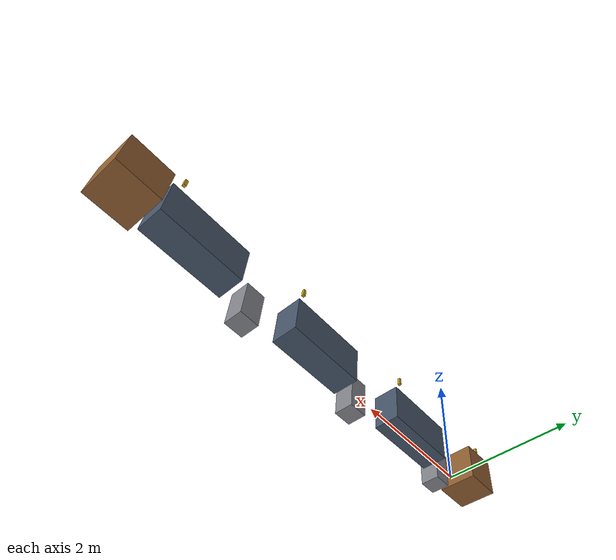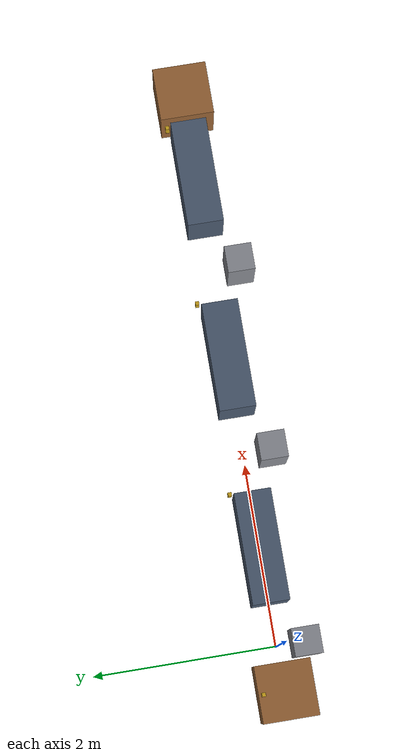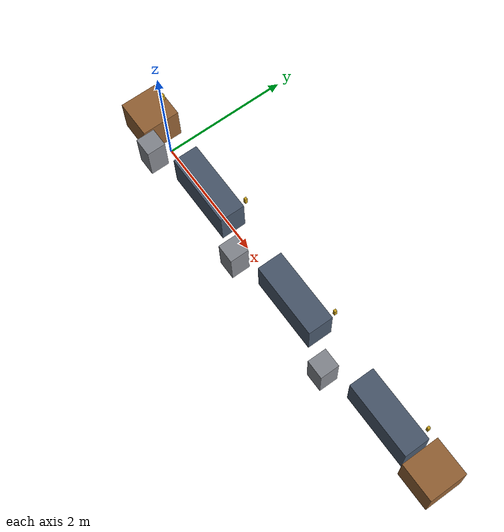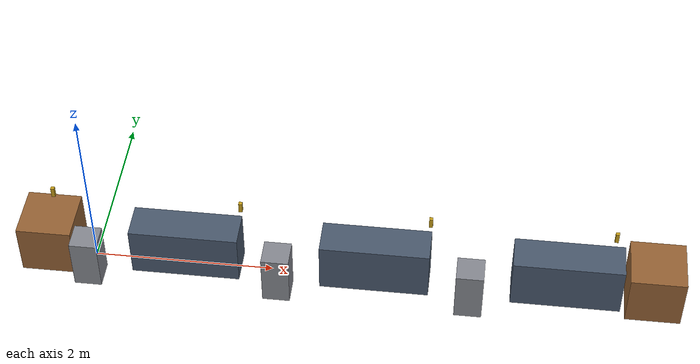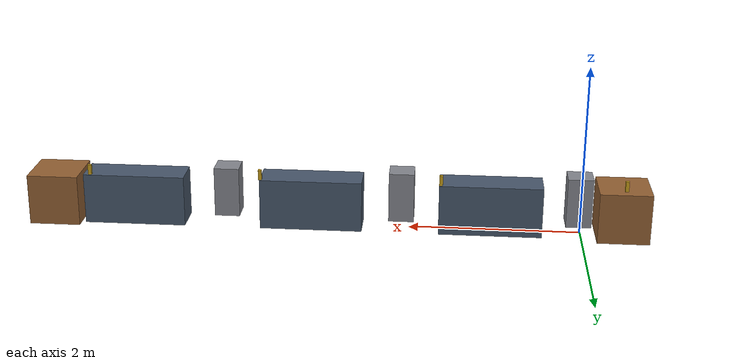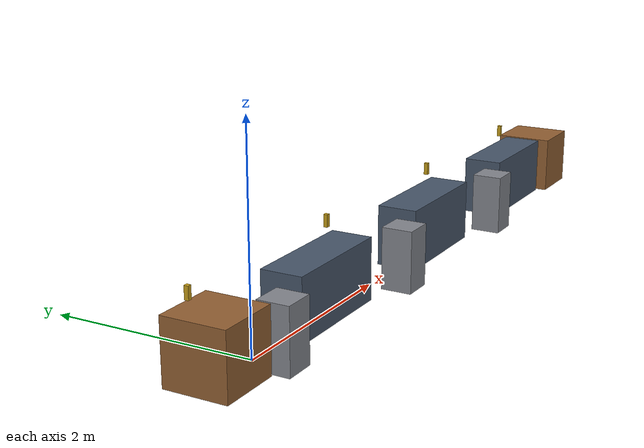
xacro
<?xml version="1.0"?>
<robot xmlns:xacro="http://ros.org/wiki/xacro" name="cell_a">

  <gazebo>
    <static>true</static>
  </gazebo>

  <!-- The facility root. Tied to the surveyed physical origin (L5); every frame
       below is expressed relative to it. -->
  <link name="cite_world"/>

  <material name="conveyor_frame">
    <color rgba="0.28 0.34 0.42 1"/>
  </material>
  <material name="pedestal_steel">
    <color rgba="0.52 0.53 0.56 1"/>
  </material>
  <material name="sensor_housing">
    <color rgba="0.78 0.62 0.1 1"/>
  </material>
  <material name="table_top">
    <color rgba="0.58 0.38 0.2 1"/>
  </material>

  <!-- beam_c1_out — break_beam -->
  <link name="beam_c1_out_base_link">
    <inertial>
      <origin xyz="0 0 0.06" rpy="0 0 0"/>
      <mass value="0.25"/>
      <inertia ixx="0.00033333" ixy="0"
               ixz="0" iyy="0.00033333"
               iyz="0" izz="6.667e-05"/>
    </inertial>
    <visual>
      <origin xyz="0 0 0.06" rpy="0 0 0"/>
      <geometry><box size="0.04 0.04 0.12"/></geometry>
      <material name="sensor_housing"/>
    </visual>
    <collision>
      <origin xyz="0 0 0.06" rpy="0 0 0"/>
      <geometry><box size="0.04 0.04 0.12"/></geometry>
    </collision>
  </link>
  <joint name="beam_c1_out_anchor" type="fixed">
    <parent link="cite_world"/>
    <child link="beam_c1_out_base_link"/>
    <origin xyz="1.63 0.25 0.63" rpy="0 0 0"/>
  </joint>
  <link name="beam_c1_out_beam"/>
  <joint name="beam_c1_out_beam_fixed" type="fixed">
    <parent link="beam_c1_out_base_link"/>
    <child link="beam_c1_out_beam"/>
    <origin xyz="0 0 0" rpy="0 0 0"/>
  </joint>

  <!-- beam_c2_out — break_beam -->
  <link name="beam_c2_out_base_link">
    <inertial>
      <origin xyz="0 0 0.06" rpy="0 0 0"/>
      <mass value="0.25"/>
      <inertia ixx="0.00033333" ixy="0"
               ixz="0" iyy="0.00033333"
               iyz="0" izz="6.667e-05"/>
    </inertial>
    <visual>
      <origin xyz="0 0 0.06" rpy="0 0 0"/>
      <geometry><box size="0.04 0.04 0.12"/></geometry>
      <material name="sensor_housing"/>
    </visual>
    <collision>
      <origin xyz="0 0 0.06" rpy="0 0 0"/>
      <geometry><box size="0.04 0.04 0.12"/></geometry>
    </collision>
  </link>
  <joint name="beam_c2_out_anchor" type="fixed">
    <parent link="cite_world"/>
    <child link="beam_c2_out_base_link"/>
    <origin xyz="3.73 0.25 0.63" rpy="0 0 0"/>
  </joint>
  <link name="beam_c2_out_beam"/>
  <joint name="beam_c2_out_beam_fixed" type="fixed">
    <parent link="beam_c2_out_base_link"/>
    <child link="beam_c2_out_beam"/>
    <origin xyz="0 0 0" rpy="0 0 0"/>
  </joint>

  <!-- beam_c3_out — break_beam -->
  <link name="beam_c3_out_base_link">
    <inertial>
      <origin xyz="0 0 0.06" rpy="0 0 0"/>
      <mass value="0.25"/>
      <inertia ixx="0.00033333" ixy="0"
               ixz="0" iyy="0.00033333"
               iyz="0" izz="6.667e-05"/>
    </inertial>
    <visual>
      <origin xyz="0 0 0.06" rpy="0 0 0"/>
      <geometry><box size="0.04 0.04 0.12"/></geometry>
      <material name="sensor_housing"/>
    </visual>
    <collision>
      <origin xyz="0 0 0.06" rpy="0 0 0"/>
      <geometry><box size="0.04 0.04 0.12"/></geometry>
    </collision>
  </link>
  <joint name="beam_c3_out_anchor" type="fixed">
    <parent link="cite_world"/>
    <child link="beam_c3_out_base_link"/>
    <origin xyz="5.745 0.25 0.63" rpy="0 0 0"/>
  </joint>
  <link name="beam_c3_out_beam"/>
  <joint name="beam_c3_out_beam_fixed" type="fixed">
    <parent link="beam_c3_out_base_link"/>
    <child link="beam_c3_out_beam"/>
    <origin xyz="0 0 0" rpy="0 0 0"/>
  </joint>

  <!-- beam_pick — break_beam -->
  <link name="beam_pick_base_link">
    <inertial>
      <origin xyz="0 0 0.06" rpy="0 0 0"/>
      <mass value="0.25"/>
      <inertia ixx="0.00033333" ixy="0"
               ixz="0" iyy="0.00033333"
               iyz="0" izz="6.667e-05"/>
    </inertial>
    <visual>
      <origin xyz="0 0 0.06" rpy="0 0 0"/>
      <geometry><box size="0.04 0.04 0.12"/></geometry>
      <material name="sensor_housing"/>
    </visual>
    <collision>
      <origin xyz="0 0 0.06" rpy="0 0 0"/>
      <geometry><box size="0.04 0.04 0.12"/></geometry>
    </collision>
  </link>
  <joint name="beam_pick_anchor" type="fixed">
    <parent link="cite_world"/>
    <child link="beam_pick_base_link"/>
    <origin xyz="-0.475 0.25 0.63" rpy="0 0 0"/>
  </joint>
  <link name="beam_pick_beam"/>
  <joint name="beam_pick_beam_fixed" type="fixed">
    <parent link="beam_pick_base_link"/>
    <child link="beam_pick_beam"/>
    <origin xyz="0 0 0" rpy="0 0 0"/>
  </joint>

  <!-- conveyor_1 — belt_1200x400 -->
  <link name="conveyor_1_base_link">
    <inertial>
      <origin xyz="0 0 0.3" rpy="0 0 0"/>
      <mass value="45"/>
      <inertia ixx="1.95" ixy="0"
               ixz="0" iyy="6.75"
               iyz="0" izz="6"/>
    </inertial>
    <visual>
      <origin xyz="0 0 0.3" rpy="0 0 0"/>
      <geometry><box size="1.2 0.4 0.6"/></geometry>
      <material name="conveyor_frame"/>
    </visual>
    <collision>
      <origin xyz="0 0 0.3" rpy="0 0 0"/>
      <geometry><box size="1.2 0.4 0.6"/></geometry>
    </collision>
  </link>
  <joint name="conveyor_1_anchor" type="fixed">
    <parent link="cite_world"/>
    <child link="conveyor_1_base_link"/>
    <origin xyz="1.05 0 0" rpy="0 0 0"/>
  </joint>
  <link name="conveyor_1_infeed"/>
  <joint name="conveyor_1_infeed_fixed" type="fixed">
    <parent link="conveyor_1_base_link"/>
    <child link="conveyor_1_infeed"/>
    <origin xyz="-0.545 0 0.6" rpy="0 0 0"/>
  </joint>
  <link name="conveyor_1_outfeed"/>
  <joint name="conveyor_1_outfeed_fixed" type="fixed">
    <parent link="conveyor_1_base_link"/>
    <child link="conveyor_1_outfeed"/>
    <origin xyz="0.545 0 0.6" rpy="0 0 0"/>
  </joint>
  <link name="conveyor_1_surface"/>
  <joint name="conveyor_1_surface_fixed" type="fixed">
    <parent link="conveyor_1_base_link"/>
    <child link="conveyor_1_surface"/>
    <origin xyz="0 0 0.6" rpy="0 0 0"/>
  </joint>

  <!-- conveyor_2 — belt_1200x400 -->
  <link name="conveyor_2_base_link">
    <inertial>
      <origin xyz="0 0 0.3" rpy="0 0 0"/>
      <mass value="45"/>
      <inertia ixx="1.95" ixy="0"
               ixz="0" iyy="6.75"
               iyz="0" izz="6"/>
    </inertial>
    <visual>
      <origin xyz="0 0 0.3" rpy="0 0 0"/>
      <geometry><box size="1.2 0.4 0.6"/></geometry>
      <material name="conveyor_frame"/>
    </visual>
    <collision>
      <origin xyz="0 0 0.3" rpy="0 0 0"/>
      <geometry><box size="1.2 0.4 0.6"/></geometry>
    </collision>
  </link>
  <joint name="conveyor_2_anchor" type="fixed">
    <parent link="cite_world"/>
    <child link="conveyor_2_base_link"/>
    <origin xyz="3.15 0 0" rpy="0 0 0"/>
  </joint>
  <link name="conveyor_2_infeed"/>
  <joint name="conveyor_2_infeed_fixed" type="fixed">
    <parent link="conveyor_2_base_link"/>
    <child link="conveyor_2_infeed"/>
    <origin xyz="-0.545 0 0.6" rpy="0 0 0"/>
  </joint>
  <link name="conveyor_2_outfeed"/>
  <joint name="conveyor_2_outfeed_fixed" type="fixed">
    <parent link="conveyor_2_base_link"/>
    <child link="conveyor_2_outfeed"/>
    <origin xyz="0.545 0 0.6" rpy="0 0 0"/>
  </joint>
  <link name="conveyor_2_surface"/>
  <joint name="conveyor_2_surface_fixed" type="fixed">
    <parent link="conveyor_2_base_link"/>
    <child link="conveyor_2_surface"/>
    <origin xyz="0 0 0.6" rpy="0 0 0"/>
  </joint>

  <!-- conveyor_3 — belt_1200x400 -->
  <link name="conveyor_3_base_link">
    <inertial>
      <origin xyz="0 0 0.3" rpy="0 0 0"/>
      <mass value="45"/>
      <inertia ixx="1.95" ixy="0"
               ixz="0" iyy="6.75"
               iyz="0" izz="6"/>
    </inertial>
    <visual>
      <origin xyz="0 0 0.3" rpy="0 0 0"/>
      <geometry><box size="1.2 0.4 0.6"/></geometry>
      <material name="conveyor_frame"/>
    </visual>
    <collision>
      <origin xyz="0 0 0.3" rpy="0 0 0"/>
      <geometry><box size="1.2 0.4 0.6"/></geometry>
    </collision>
  </link>
  <joint name="conveyor_3_anchor" type="fixed">
    <parent link="cite_world"/>
    <child link="conveyor_3_base_link"/>
    <origin xyz="5.25 0 0" rpy="0 0 0"/>
  </joint>
  <link name="conveyor_3_infeed"/>
  <joint name="conveyor_3_infeed_fixed" type="fixed">
    <parent link="conveyor_3_base_link"/>
    <child link="conveyor_3_infeed"/>
    <origin xyz="-0.545 0 0.6" rpy="0 0 0"/>
  </joint>
  <link name="conveyor_3_outfeed"/>
  <joint name="conveyor_3_outfeed_fixed" type="fixed">
    <parent link="conveyor_3_base_link"/>
    <child link="conveyor_3_outfeed"/>
    <origin xyz="0.545 0 0.6" rpy="0 0 0"/>
  </joint>
  <link name="conveyor_3_surface"/>
  <joint name="conveyor_3_surface_fixed" type="fixed">
    <parent link="conveyor_3_base_link"/>
    <child link="conveyor_3_surface"/>
    <origin xyz="0 0 0.6" rpy="0 0 0"/>
  </joint>

  <!-- pedestal_1 — pedestal_600 -->
  <link name="pedestal_1_base_link">
    <inertial>
      <origin xyz="0 0 0.3" rpy="0 0 0"/>
      <mass value="40"/>
      <inertia ixx="1.5" ixy="0"
               ixz="0" iyy="1.5"
               iyz="0" izz="0.6"/>
    </inertial>
    <visual>
      <origin xyz="0 0 0.3" rpy="0 0 0"/>
      <geometry><box size="0.3 0.3 0.6"/></geometry>
      <material name="pedestal_steel"/>
    </visual>
    <collision>
      <origin xyz="0 0 0.3" rpy="0 0 0"/>
      <geometry><box size="0.3 0.3 0.6"/></geometry>
    </collision>
  </link>
  <joint name="pedestal_1_anchor" type="fixed">
    <parent link="cite_world"/>
    <child link="pedestal_1_base_link"/>
    <origin xyz="0 -0.3 0" rpy="0 0 0"/>
  </joint>
  <link name="pedestal_1_top"/>
  <joint name="pedestal_1_top_fixed" type="fixed">
    <parent link="pedestal_1_base_link"/>
    <child link="pedestal_1_top"/>
    <origin xyz="0 0 0.6" rpy="0 0 0"/>
  </joint>

  <!-- pedestal_2 — pedestal_600 -->
  <link name="pedestal_2_base_link">
    <inertial>
      <origin xyz="0 0 0.3" rpy="0 0 0"/>
      <mass value="40"/>
      <inertia ixx="1.5" ixy="0"
               ixz="0" iyy="1.5"
               iyz="0" izz="0.6"/>
    </inertial>
    <visual>
      <origin xyz="0 0 0.3" rpy="0 0 0"/>
      <geometry><box size="0.3 0.3 0.6"/></geometry>
      <material name="pedestal_steel"/>
    </visual>
    <collision>
      <origin xyz="0 0 0.3" rpy="0 0 0"/>
      <geometry><box size="0.3 0.3 0.6"/></geometry>
    </collision>
  </link>
  <joint name="pedestal_2_anchor" type="fixed">
    <parent link="cite_world"/>
    <child link="pedestal_2_base_link"/>
    <origin xyz="2.1 -0.3 0" rpy="0 0 0"/>
  </joint>
  <link name="pedestal_2_top"/>
  <joint name="pedestal_2_top_fixed" type="fixed">
    <parent link="pedestal_2_base_link"/>
    <child link="pedestal_2_top"/>
    <origin xyz="0 0 0.6" rpy="0 0 0"/>
  </joint>

  <!-- pedestal_3 — pedestal_600 -->
  <link name="pedestal_3_base_link">
    <inertial>
      <origin xyz="0 0 0.3" rpy="0 0 0"/>
      <mass value="40"/>
      <inertia ixx="1.5" ixy="0"
               ixz="0" iyy="1.5"
               iyz="0" izz="0.6"/>
    </inertial>
    <visual>
      <origin xyz="0 0 0.3" rpy="0 0 0"/>
      <geometry><box size="0.3 0.3 0.6"/></geometry>
      <material name="pedestal_steel"/>
    </visual>
    <collision>
      <origin xyz="0 0 0.3" rpy="0 0 0"/>
      <geometry><box size="0.3 0.3 0.6"/></geometry>
    </collision>
  </link>
  <joint name="pedestal_3_anchor" type="fixed">
    <parent link="cite_world"/>
    <child link="pedestal_3_base_link"/>
    <origin xyz="4.2 -0.3 0" rpy="0 0 0"/>
  </joint>
  <link name="pedestal_3_top"/>
  <joint name="pedestal_3_top_fixed" type="fixed">
    <parent link="pedestal_3_base_link"/>
    <child link="pedestal_3_top"/>
    <origin xyz="0 0 0.6" rpy="0 0 0"/>
  </joint>

  <!-- table_accumulation — work_table_600 -->
  <link name="table_accumulation_base_link">
    <inertial>
      <origin xyz="0 0 0.3" rpy="0 0 0"/>
      <mass value="30"/>
      <inertia ixx="1.8" ixy="0"
               ixz="0" iyy="1.8"
               iyz="0" izz="1.8"/>
    </inertial>
    <visual>
      <origin xyz="0 0 0.3" rpy="0 0 0"/>
      <geometry><box size="0.6 0.6 0.6"/></geometry>
      <material name="table_top"/>
    </visual>
    <collision>
      <origin xyz="0 0 0.3" rpy="0 0 0"/>
      <geometry><box size="0.6 0.6 0.6"/></geometry>
    </collision>
  </link>
  <joint name="table_accumulation_anchor" type="fixed">
    <parent link="cite_world"/>
    <child link="table_accumulation_base_link"/>
    <origin xyz="6.2 0 0" rpy="0 0 0"/>
  </joint>
  <link name="table_accumulation_surface"/>
  <joint name="table_accumulation_surface_fixed" type="fixed">
    <parent link="table_accumulation_base_link"/>
    <child link="table_accumulation_surface"/>
    <origin xyz="0 0 0.6" rpy="0 0 0"/>
  </joint>

  <!-- table_pick — work_table_600 -->
  <link name="table_pick_base_link">
    <inertial>
      <origin xyz="0 0 0.3" rpy="0 0 0"/>
      <mass value="30"/>
      <inertia ixx="1.8" ixy="0"
               ixz="0" iyy="1.8"
               iyz="0" izz="1.8"/>
    </inertial>
    <visual>
      <origin xyz="0 0 0.3" rpy="0 0 0"/>
      <geometry><box size="0.6 0.6 0.6"/></geometry>
      <material name="table_top"/>
    </visual>
    <collision>
      <origin xyz="0 0 0.3" rpy="0 0 0"/>
      <geometry><box size="0.6 0.6 0.6"/></geometry>
    </collision>
  </link>
  <joint name="table_pick_anchor" type="fixed">
    <parent link="cite_world"/>
    <child link="table_pick_base_link"/>
    <origin xyz="-0.475 0 0" rpy="0 0 0"/>
  </joint>
  <link name="table_pick_surface"/>
  <joint name="table_pick_surface_fixed" type="fixed">
    <parent link="table_pick_base_link"/>
    <child link="table_pick_surface"/>
    <origin xyz="0 0 0.6" rpy="0 0 0"/>
  </joint>

</robot>
